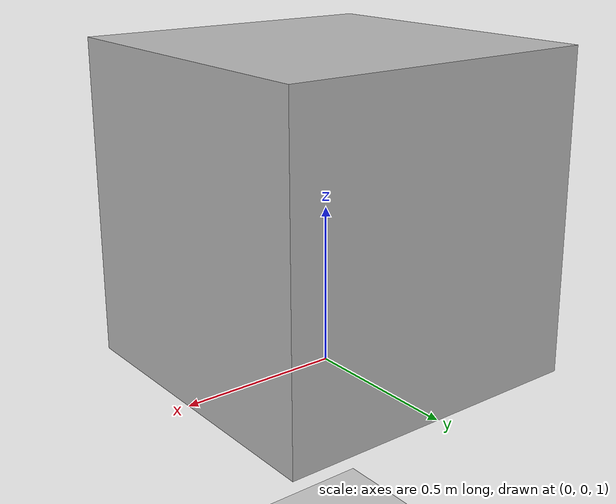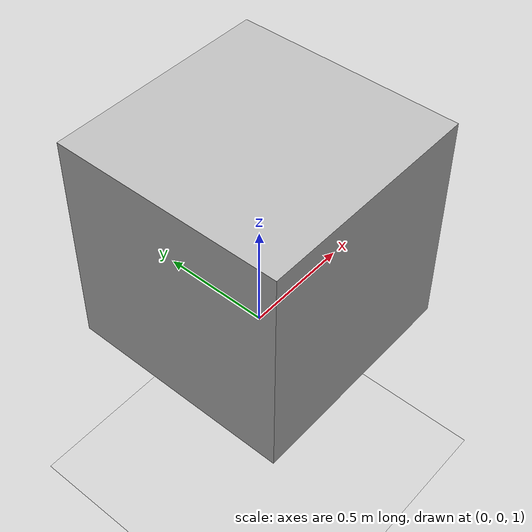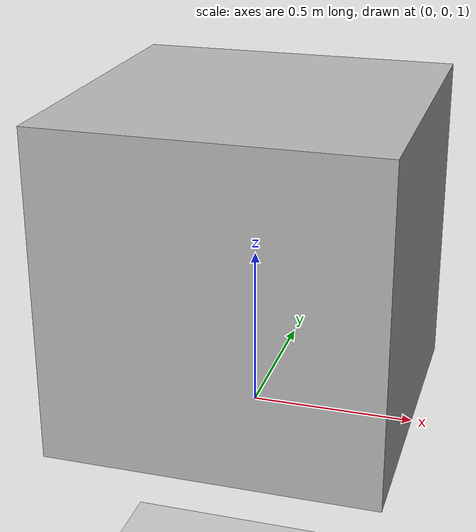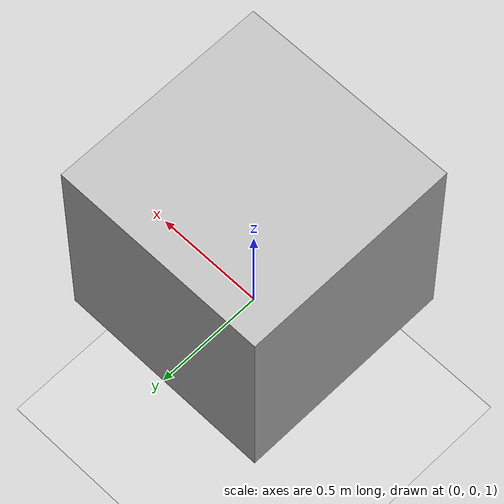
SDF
<?xml version="1.0"?>
<!--
  Gazebo ROS harness plugin demo

  Try for example:

  ros2 topic pub -1 /demo/velocity_demo std_msgs/msg/Float32 "data: -1.0"
  ros2 topic pub -1 /demo/detach_demo std_msgs/msg/Empty
-->
<sdf version="1.6">
  <world name="default">

    <include>
      <uri>model://ground_plane</uri>
    </include>

    <include>
      <uri>model://sun</uri>
    </include>

    <!-- box to be harnessed -->
    <model name="box">
      <pose>0 0 1.5 0 0 0</pose>
      <link name="link">
        <collision name="collision">
          <geometry>
            <box>
              <size>1 1 1</size>
            </box>
          </geometry>
        </collision>
        <visual name="visual">
          <geometry>
            <box>
              <size>1 1 1</size>
            </box>
          </geometry>
        </visual>
      </link>
      <plugin name="harness" filename="libgazebo_ros_harness.so">
        <ros>
          <namespace>demo</namespace>
          <remapping>box/harness/velocity:=velocity_demo</remapping>
          <remapping>box/harness/detach:=detach_demo</remapping>
        </ros>
        <!-- set initial harness velocity -->

        <joint name="joint1" type="prismatic">
          <!-- The joint that raises or lowers the harness.
           This must be specified within the body of this plugin. -->
          <pose>0 0 0 0 0 0</pose>
          <parent>world</parent>
          <child>link</child>
          <axis>
            <xyz>0 0 1</xyz>
            <dynamics>
              <damping>10</damping>
            </dynamics>
            <limit>
              <lower>-1.5</lower>
              <upper>1.5</upper>
              <effort>10000</effort>
              <velocity>-1</velocity>
              <stiffness>0</stiffness>
              <dissipation>0</dissipation>
            </limit>
          </axis>
          <physics>
            <ode>
              <implicit_spring_damper>1</implicit_spring_damper>
              <limit>
                <cfm>0.0</cfm>
                <erp>0.0</erp>
              </limit>
            </ode>
          </physics>
        </joint>

        <winch>
          <joint>joint1</joint>
          <!-- PID value for velocity control of the winch. -->
          <pos_pid>
            <p>1000000</p>
            <i>0</i>
            <d>0</d>
            <i_min>0</i_min>
            <i_max>0</i_max>
            <cmd_min>-10000</cmd_min>
            <cmd_max>10000</cmd_max>
          </pos_pid>

          <vel_pid>
            <p>10000</p>
            <i>0</i>
            <d>0</d>
            <i_min>0</i_min>
            <i_max>0</i_max>
            <cmd_min>0</cmd_min>
            <cmd_max>10000</cmd_max>
          </vel_pid>
        </winch>

        <!-- Joint to detach. Once the joint is detached, it cannot be
          reattached. This must be a joint specified within the
          body of this plugin. -->
        <detach>joint1</detach>
      </plugin>
    </model>
  </world>
</sdf>
